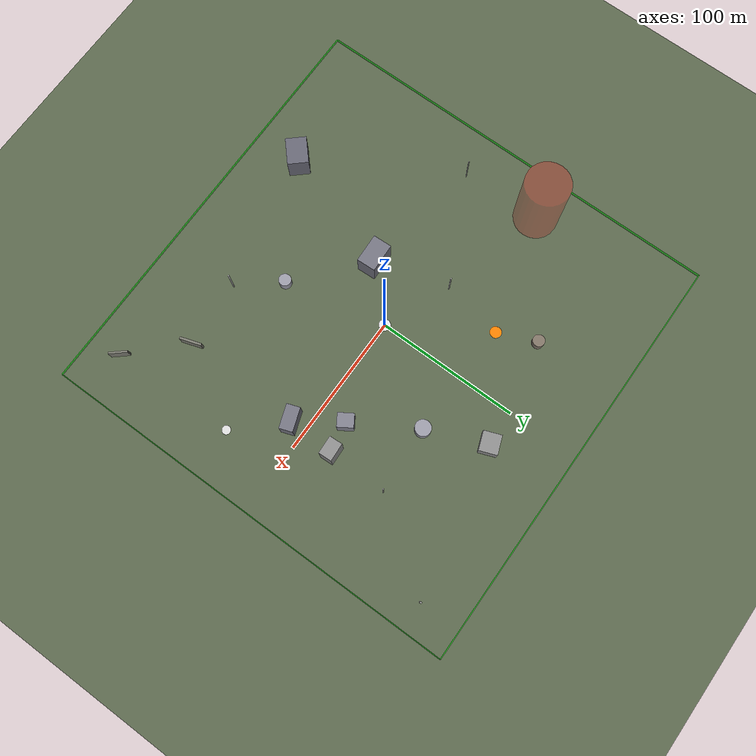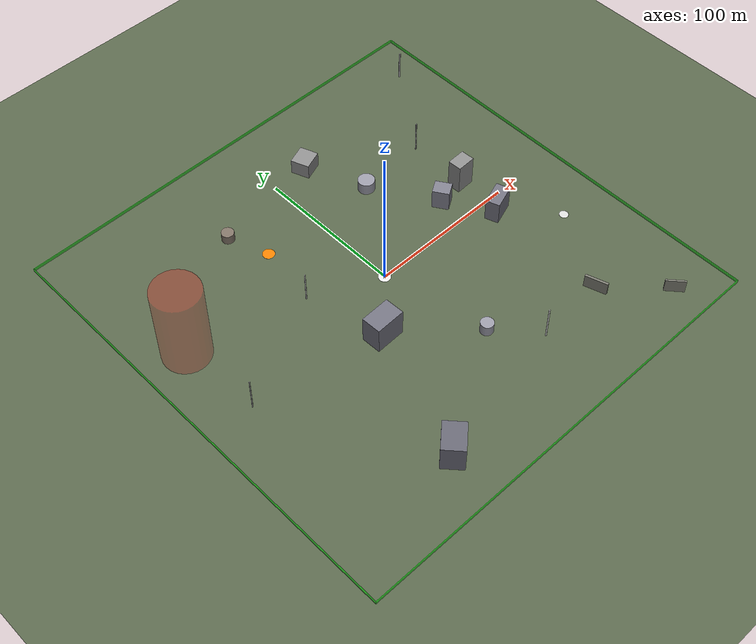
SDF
<?xml version="1.0" ?>
<sdf version="1.9">
  <!--
  Generated World: training_variant_004
  Seed: 46
  Difficulty: medium
  Obstacles: 16
  NFZs: 1
  Generated: 2025-12-27T10:39:35.541755
  Generator: Flyby F-11 World Generator v1.0.0
-->
  <world name="training_variant_004">
    <physics name="training_physics" type="ode">
      <max_step_size>0.001</max_step_size>
      <real_time_factor>1.0</real_time_factor>
      <real_time_update_rate>1000</real_time_update_rate>
      <ode>
        <solver>
          <type>quick</type>
          <iters>50</iters>
          <sor>1.3</sor>
        </solver>
        <constraints>
          <cfm>0.0</cfm>
          <erp>0.2</erp>
        </constraints>
      </ode>
    </physics>
    <plugin filename="gz-sim-physics-system" name="gz::sim::systems::Physics"/>
    <plugin filename="gz-sim-sensors-system" name="gz::sim::systems::Sensors">
      <render_engine>ogre2</render_engine>
    </plugin>
    <plugin filename="gz-sim-scene-broadcaster-system" name="gz::sim::systems::SceneBroadcaster"/>
    <plugin filename="gz-sim-user-commands-system" name="gz::sim::systems::UserCommands"/>
    <plugin filename="gz-sim-imu-system" name="gz::sim::systems::Imu"/>
    <plugin filename="gz-sim-air-pressure-system" name="gz::sim::systems::AirPressure"/>
    <plugin filename="gz-sim-magnetometer-system" name="gz::sim::systems::Magnetometer"/>
    <plugin filename="gz-sim-navsat-system" name="gz::sim::systems::NavSat"/>
    <plugin filename="gz-sim-contact-system" name="gz::sim::systems::Contact"/>
    <plugin filename="gz-sim-wind-effects-system" name="gz::sim::systems::WindEffects">
      <force_approximation_scaling_factor>1.0</force_approximation_scaling_factor>
    </plugin>
    <atmosphere type="adiabatic">
      <temperature>288.15</temperature>
      <pressure>101325</pressure>
      <mass_density>1.225</mass_density>
    </atmosphere>
    <wind>
      <linear_velocity>3.628473203410078 -0.8629025797986154 0</linear_velocity>
    </wind>
    <spherical_coordinates>
      <surface_model>EARTH_WGS84</surface_model>
      <world_frame_orientation>ENU</world_frame_orientation>
      <latitude_deg>33.3853</latitude_deg>
      <longitude_deg>-117.5653</longitude_deg>
      <elevation>100</elevation>
      <heading_deg>0</heading_deg>
    </spherical_coordinates>
    <scene>
      <ambient>0.4 0.35 0.35 1</ambient>
      <background>0.8 0.5 0.4 1</background>
      <shadows>true</shadows>
      <grid>false</grid>
    </scene>
    <light type="directional" name="sun">
      <cast_shadows>true</cast_shadows>
      <pose>0 0 100 0 0 0</pose>
      <diffuse>0.9 0.6 0.4 1</diffuse>
      <specular>0.2 0.1 0.1 1</specular>
      <attenuation>
        <range>1000</range>
        <constant>0.9</constant>
        <linear>0.01</linear>
        <quadratic>0.001</quadratic>
      </attenuation>
      <direction>-0.1 0.3 -0.3</direction>
    </light>
    <model name="ground_plane">
      <static>true</static>
      <link name="link">
        <collision name="collision">
          <geometry>
            <plane>
              <normal>0 0 1</normal>
              <size>500 500</size>
            </plane>
          </geometry>
          <surface>
            <friction>
              <ode>
                <mu>100</mu>
                <mu2>50</mu2>
              </ode>
            </friction>
          </surface>
        </collision>
        <visual name="visual">
          <geometry>
            <plane>
              <normal>0 0 1</normal>
              <size>500 500</size>
            </plane>
          </geometry>
          <material>
            <ambient>0.35 0.4 0.3 1</ambient>
            <diffuse>0.35 0.4 0.3 1</diffuse>
          </material>
        </visual>
      </link>
    </model>
    <model name="geofence_north">
      <static>true</static>
      <pose>0 150.0 1 0 0 0</pose>
      <link name="link">
        <visual name="visual">
          <geometry>
            <box>
              <size>300.0 0.5 2</size>
            </box>
          </geometry>
          <material>
            <ambient>0 0.8 0 0.6</ambient>
            <diffuse>0 0.8 0 0.6</diffuse>
            <emissive>0 0.2 0 1</emissive>
          </material>
        </visual>
      </link>
    </model>
    <model name="geofence_south">
      <static>true</static>
      <pose>0 -150.0 1 0 0 0</pose>
      <link name="link">
        <visual name="visual">
          <geometry>
            <box>
              <size>300.0 0.5 2</size>
            </box>
          </geometry>
          <material>
            <ambient>0 0.8 0 0.6</ambient>
            <diffuse>0 0.8 0 0.6</diffuse>
            <emissive>0 0.2 0 1</emissive>
          </material>
        </visual>
      </link>
    </model>
    <model name="geofence_east">
      <static>true</static>
      <pose>150.0 0 1 0 0 0</pose>
      <link name="link">
        <visual name="visual">
          <geometry>
            <box>
              <size>0.5 300.0 2</size>
            </box>
          </geometry>
          <material>
            <ambient>0 0.8 0 0.6</ambient>
            <diffuse>0 0.8 0 0.6</diffuse>
            <emissive>0 0.2 0 1</emissive>
          </material>
        </visual>
      </link>
    </model>
    <model name="geofence_west">
      <static>true</static>
      <pose>-150.0 0 1 0 0 0</pose>
      <link name="link">
        <visual name="visual">
          <geometry>
            <box>
              <size>0.5 300.0 2</size>
            </box>
          </geometry>
          <material>
            <ambient>0 0.8 0 0.6</ambient>
            <diffuse>0 0.8 0 0.6</diffuse>
            <emissive>0 0.2 0 1</emissive>
          </material>
        </visual>
      </link>
    </model>
    <model name="nfz_0_volume">
      <static>true</static>
      <pose>-121.15283939761811 38.30625586032481 28.689773339268744 0 0 0</pose>
      <link name="link">
        <visual name="visual">
          <geometry>
            <cylinder>
              <radius>15.240071941839476</radius>
              <length>57.37954667853749</length>
            </cylinder>
          </geometry>
          <material>
            <ambient>1 0 0 0.25</ambient>
            <diffuse>1 0 0 0.25</diffuse>
          </material>
        </visual>
      </link>
    </model>
    <model name="obstacle_pole_0">
      <static>true</static>
      <pose>37.41128979205419 -96.78633946541527 11.93793577062112 0 0 0.0</pose>
      <link name="link">
        <visual name="visual">
          <geometry>
            <cylinder>
              <radius>0.4760706533337831</radius>
              <length>23.87587154124224</length>
            </cylinder>
          </geometry>
          <material>
            <ambient>0.75 0.75 0.75 1.0</ambient>
            <diffuse>0.75 0.75 0.75 1.0</diffuse>
          </material>
        </visual>
        <collision name="collision">
          <geometry>
            <cylinder>
              <radius>0.4760706533337831</radius>
              <length>23.87587154124224</length>
            </cylinder>
          </geometry>
        </collision>
      </link>
    </model>
    <model name="obstacle_tank_1">
      <static>true</static>
      <pose>-48.890789131610205 88.34133360754942 3.206831010799622 0 0 0.0</pose>
      <link name="link">
        <visual name="visual">
          <geometry>
            <cylinder>
              <radius>4.128725559425071</radius>
              <length>6.413662021599244</length>
            </cylinder>
          </geometry>
          <material>
            <ambient>0.5 0.45 0.4 1.0</ambient>
            <diffuse>0.5 0.45 0.4 1.0</diffuse>
          </material>
        </visual>
        <collision name="collision">
          <geometry>
            <cylinder>
              <radius>4.128725559425071</radius>
              <length>6.413662021599244</length>
            </cylinder>
          </geometry>
        </collision>
      </link>
    </model>
    <model name="obstacle_pole_2">
      <static>true</static>
      <pose>129.93327068539224 120.66451871038481 10.13884672260489 0 0 0.0</pose>
      <link name="link">
        <visual name="visual">
          <geometry>
            <cylinder>
              <radius>0.5758620060130697</radius>
              <length>20.27769344520978</length>
            </cylinder>
          </geometry>
          <material>
            <ambient>0.65 0.65 0.65 1.0</ambient>
            <diffuse>0.65 0.65 0.65 1.0</diffuse>
          </material>
        </visual>
        <collision name="collision">
          <geometry>
            <cylinder>
              <radius>0.5758620060130697</radius>
              <length>20.27769344520978</length>
            </cylinder>
          </geometry>
        </collision>
      </link>
    </model>
    <model name="obstacle_building_3">
      <static>true</static>
      <pose>87.13369000595492 -10.6508243565181 8.001149102730098 0 0 0.3398133070898848</pose>
      <link name="link">
        <visual name="visual">
          <geometry>
            <box>
              <size>16.462647361643107 9.243406410552563 16.002298205460196</size>
            </box>
          </geometry>
          <material>
            <ambient>0.45 0.45 0.5 1.0</ambient>
            <diffuse>0.45 0.45 0.5 1.0</diffuse>
          </material>
        </visual>
        <collision name="collision">
          <geometry>
            <box>
              <size>16.462647361643107 9.243406410552563 16.002298205460196</size>
            </box>
          </geometry>
        </collision>
      </link>
    </model>
    <model name="obstacle_building_4">
      <static>true</static>
      <pose>25.26475409853404 100.44543794778116 5.303207400490976 0 0 0.36158954282594896</pose>
      <link name="link">
        <visual name="visual">
          <geometry>
            <box>
              <size>13.327466736301373 12.447152670291267 10.606414800981952</size>
            </box>
          </geometry>
          <material>
            <ambient>0.55 0.55 0.55 1.0</ambient>
            <diffuse>0.55 0.55 0.55 1.0</diffuse>
          </material>
        </visual>
        <collision name="collision">
          <geometry>
            <box>
              <size>13.327466736301373 12.447152670291267 10.606414800981952</size>
            </box>
          </geometry>
        </collision>
      </link>
    </model>
    <model name="obstacle_building_5">
      <static>true</static>
      <pose>87.98644696573129 22.270402964620672 10.597727531425948 0 0 0.05072833899534793</pose>
      <link name="link">
        <visual name="visual">
          <geometry>
            <box>
              <size>12.606334236419256 9.209691486945083 21.195455062851895</size>
            </box>
          </geometry>
          <material>
            <ambient>0.55 0.55 0.55 1.0</ambient>
            <diffuse>0.55 0.55 0.55 1.0</diffuse>
          </material>
        </visual>
        <collision name="collision">
          <geometry>
            <box>
              <size>12.606334236419256 9.209691486945083 21.195455062851895</size>
            </box>
          </geometry>
        </collision>
      </link>
    </model>
    <model name="obstacle_building_6">
      <static>true</static>
      <pose>67.56892635485664 18.452173562700494 7.109734546417933 0 0 0.5655145045869338</pose>
      <link name="link">
        <visual name="visual">
          <geometry>
            <box>
              <size>9.389471563894322 11.040911180129477 14.219469092835865</size>
            </box>
          </geometry>
          <material>
            <ambient>0.5 0.5 0.55 1.0</ambient>
            <diffuse>0.5 0.5 0.55 1.0</diffuse>
          </material>
        </visual>
        <collision name="collision">
          <geometry>
            <box>
              <size>9.389471563894322 11.040911180129477 14.219469092835865</size>
            </box>
          </geometry>
        </collision>
      </link>
    </model>
    <model name="obstacle_pole_7">
      <static>true</static>
      <pose>-45.31029358558155 20.003913526650365 11.207192199612338 0 0 0.0</pose>
      <link name="link">
        <visual name="visual">
          <geometry>
            <cylinder>
              <radius>0.4182909766599998</radius>
              <length>22.414384399224677</length>
            </cylinder>
          </geometry>
          <material>
            <ambient>0.75 0.75 0.75 1.0</ambient>
            <diffuse>0.75 0.75 0.75 1.0</diffuse>
          </material>
        </visual>
        <collision name="collision">
          <geometry>
            <cylinder>
              <radius>0.4182909766599998</radius>
              <length>22.414384399224677</length>
            </cylinder>
          </geometry>
        </collision>
      </link>
    </model>
    <model name="obstacle_wall_8">
      <static>true</static>
      <pose>117.57093921273844 -127.41750676109463 4.723928592974428 0 0 2.289419279293963</pose>
      <link name="link">
        <visual name="visual">
          <geometry>
            <box>
              <size>12.782436110142951 1.3008427873564161 9.447857185948855</size>
            </box>
          </geometry>
          <material>
            <ambient>0.48 0.48 0.44 1.0</ambient>
            <diffuse>0.48 0.48 0.44 1.0</diffuse>
          </material>
        </visual>
        <collision name="collision">
          <geometry>
            <box>
              <size>12.782436110142951 1.3008427873564161 9.447857185948855</size>
            </box>
          </geometry>
        </collision>
      </link>
    </model>
    <model name="obstacle_pole_9">
      <static>true</static>
      <pose>-118.15802974080113 -16.519512833187775 12.192003655649426 0 0 0.0</pose>
      <link name="link">
        <visual name="visual">
          <geometry>
            <cylinder>
              <radius>0.3703934744721301</radius>
              <length>24.384007311298852</length>
            </cylinder>
          </geometry>
          <material>
            <ambient>0.65 0.65 0.65 1.0</ambient>
            <diffuse>0.65 0.65 0.65 1.0</diffuse>
          </material>
        </visual>
        <collision name="collision">
          <geometry>
            <cylinder>
              <radius>0.3703934744721301</radius>
              <length>24.384007311298852</length>
            </cylinder>
          </geometry>
        </collision>
      </link>
    </model>
    <model name="obstacle_pole_10">
      <static>true</static>
      <pose>89.02055859313515 63.421843516040354 11.402827160509002 0 0 0.0</pose>
      <link name="link">
        <visual name="visual">
          <geometry>
            <cylinder>
              <radius>0.41432192297766274</radius>
              <length>22.805654321018004</length>
            </cylinder>
          </geometry>
          <material>
            <ambient>0.7 0.7 0.7 1.0</ambient>
            <diffuse>0.7 0.7 0.7 1.0</diffuse>
          </material>
        </visual>
        <collision name="collision">
          <geometry>
            <cylinder>
              <radius>0.41432192297766274</radius>
              <length>22.805654321018004</length>
            </cylinder>
          </geometry>
        </collision>
      </link>
    </model>
    <model name="obstacle_building_11">
      <static>true</static>
      <pose>-31.267456280740262 -31.065735757644774 9.593630467718889 0 0 0.04150271204578927</pose>
      <link name="link">
        <visual name="visual">
          <geometry>
            <box>
              <size>19.865929080452133 13.110460083563936 19.187260935437777</size>
            </box>
          </geometry>
          <material>
            <ambient>0.45 0.45 0.5 1.0</ambient>
            <diffuse>0.45 0.45 0.5 1.0</diffuse>
          </material>
        </visual>
        <collision name="collision">
          <geometry>
            <box>
              <size>19.865929080452133 13.110460083563936 19.187260935437777</size>
            </box>
          </geometry>
        </collision>
      </link>
    </model>
    <model name="obstacle_tank_12">
      <static>true</static>
      <pose>42.013652557751186 60.49100746038329 3.9580221014555432 0 0 0.0</pose>
      <link name="link">
        <visual name="visual">
          <geometry>
            <cylinder>
              <radius>5.510514403170323</radius>
              <length>7.9160442029110865</length>
            </cylinder>
          </geometry>
          <material>
            <ambient>0.6 0.6 0.65 1.0</ambient>
            <diffuse>0.6 0.6 0.65 1.0</diffuse>
          </material>
        </visual>
        <collision name="collision">
          <geometry>
            <cylinder>
              <radius>5.510514403170323</radius>
              <length>7.9160442029110865</length>
            </cylinder>
          </geometry>
        </collision>
      </link>
    </model>
    <model name="obstacle_tank_13">
      <static>true</static>
      <pose>15.20198721114346 -70.25726574868669 3.741994305079917 0 0 0.0</pose>
      <link name="link">
        <visual name="visual">
          <geometry>
            <cylinder>
              <radius>4.228018951576486</radius>
              <length>7.483988610159834</length>
            </cylinder>
          </geometry>
          <material>
            <ambient>0.6 0.6 0.65 1.0</ambient>
            <diffuse>0.6 0.6 0.65 1.0</diffuse>
          </material>
        </visual>
        <collision name="collision">
          <geometry>
            <cylinder>
              <radius>4.228018951576486</radius>
              <length>7.483988610159834</length>
            </cylinder>
          </geometry>
        </collision>
      </link>
    </model>
    <model name="obstacle_building_14">
      <static>true</static>
      <pose>-59.49710785487386 -115.81898496876438 9.618522303707909 0 0 0.7336107233091643</pose>
      <link name="link">
        <visual name="visual">
          <geometry>
            <box>
              <size>18.726895748793094 14.330534098596512 19.237044607415818</size>
            </box>
          </geometry>
          <material>
            <ambient>0.4 0.4 0.45 1.0</ambient>
            <diffuse>0.4 0.4 0.45 1.0</diffuse>
          </material>
        </visual>
        <collision name="collision">
          <geometry>
            <box>
              <size>18.726895748793094 14.330534098596512 19.237044607415818</size>
            </box>
          </geometry>
        </collision>
      </link>
    </model>
    <model name="obstacle_wall_15">
      <static>true</static>
      <pose>84.36967943439214 -94.15979785360025 4.643298357275424 0 0 1.8803643915093733</pose>
      <link name="link">
        <visual name="visual">
          <geometry>
            <box>
              <size>14.977423022722139 1.639546084678093 9.286596714550848</size>
            </box>
          </geometry>
          <material>
            <ambient>0.48 0.48 0.44 1.0</ambient>
            <diffuse>0.48 0.48 0.44 1.0</diffuse>
          </material>
        </visual>
        <collision name="collision">
          <geometry>
            <box>
              <size>14.977423022722139 1.639546084678093 9.286596714550848</size>
            </box>
          </geometry>
        </collision>
      </link>
    </model>
    <model name="lz_primary">
      <static>true</static>
      <pose>0 0 0.02 0 0 0</pose>
      <link name="link">
        <visual name="pad">
          <geometry>
            <cylinder>
              <radius>4.0</radius>
              <length>0.04</length>
            </cylinder>
          </geometry>
          <material>
            <ambient>0.9 0.9 0.9 1</ambient>
            <diffuse>0.9 0.9 0.9 1</diffuse>
          </material>
        </visual>
        <visual name="H_v">
          <pose>0 0 0.02 0 0 0</pose>
          <geometry>
            <box>
              <size>0.6 2.5 0.01</size>
            </box>
          </geometry>
          <material>
            <ambient>0 0 0.8 1</ambient>
            <diffuse>0 0 0.8 1</diffuse>
          </material>
        </visual>
        <visual name="H_h">
          <pose>0 0 0.02 0 0 0</pose>
          <geometry>
            <box>
              <size>2.5 0.6 0.01</size>
            </box>
          </geometry>
          <material>
            <ambient>0 0 0.8 1</ambient>
            <diffuse>0 0 0.8 1</diffuse>
          </material>
        </visual>
      </link>
    </model>
    <model name="lz_secondary">
      <static>true</static>
      <pose>116.03805375755189 -41.46856177870809 0.02 0 0 0</pose>
      <link name="link">
        <visual name="pad">
          <geometry>
            <cylinder>
              <radius>3.0</radius>
              <length>0.04</length>
            </cylinder>
          </geometry>
          <material>
            <ambient>0.85 0.85 0.85 1</ambient>
            <diffuse>0.85 0.85 0.85 1</diffuse>
          </material>
        </visual>
      </link>
    </model>
    <model name="lz_emergency">
      <static>true</static>
      <pose>-38.74076343776592 62.13914339076601 0.02 0 0 0</pose>
      <link name="link">
        <visual name="pad">
          <geometry>
            <cylinder>
              <radius>4.0</radius>
              <length>0.04</length>
            </cylinder>
          </geometry>
          <material>
            <ambient>1 0.5 0 1</ambient>
            <diffuse>1 0.5 0 1</diffuse>
          </material>
        </visual>
      </link>
    </model>
    <include>
      <uri>model://iris_with_ardupilot</uri>
      <name>iris</name>
      <pose>0 0 0.5 0 0 0</pose>
    </include>
  </world>
</sdf>

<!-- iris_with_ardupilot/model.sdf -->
<sdf version="1.9">
  <model name="iris_with_ardupilot">
    <pose>0 0 0.2 0 0 0</pose>

    <link name="base_link">
      <inertial>
        <mass>1.5</mass>
        <inertia>
          <ixx>0.029125</ixx>
          <ixy>0</ixy>
          <ixz>0</ixz>
          <iyy>0.029125</iyy>
          <iyz>0</iyz>
          <izz>0.055225</izz>
        </inertia>
      </inertial>

      <visual name="body_visual">
        <geometry>
          <box>
            <size>0.47 0.47 0.11</size>
          </box>
        </geometry>
        <material>
          <ambient>0.2 0.2 0.2 1</ambient>
          <diffuse>0.2 0.2 0.2 1</diffuse>
        </material>
      </visual>

      <!-- Center marker for orientation (green = forward) -->
      <visual name="center_marker">
        <pose>0.15 0 0 0 0 0</pose>
        <geometry>
          <sphere>
            <radius>0.05</radius>
          </sphere>
        </geometry>
        <material>
          <ambient>0 1 0 1</ambient>
          <diffuse>0 1 0 1</diffuse>
        </material>
      </visual>

      <collision name="collision">
        <geometry>
          <box>
            <size>0.47 0.47 0.11</size>
          </box>
        </geometry>
      </collision>

      <!-- GPS/NavSat Sensor                -->
      <!-- Consumer-grade GPS accuracy      -->
      <sensor name="navsat_sensor" type="navsat">
        <always_on>1</always_on>
        <update_rate>10</update_rate>
        <topic>gps</topic>
        <navsat>
          <position_sensing>
            <horizontal>
              <noise type="gaussian">
                <mean>0.0</mean>
                <stddev>0.5</stddev>
              </noise>
            </horizontal>
            <vertical>
              <noise type="gaussian">
                <mean>0.0</mean>
                <stddev>1.0</stddev>
              </noise>
            </vertical>
          </position_sensing>
          <velocity_sensing>
            <horizontal>
              <noise type="gaussian">
                <mean>0.0</mean>
                <stddev>0.05</stddev>
              </noise>
            </horizontal>
            <vertical>
              <noise type="gaussian">
                <mean>0.0</mean>
                <stddev>0.1</stddev>
              </noise>
            </vertical>
          </velocity_sensing>
        </navsat>
      </sensor>

      <!-- Magnetometer Sensor              -->
      <!-- Earth magnetic field sensing     -->
      <!-- Declination: ~11.5 deg E (San Diego) -->
      <sensor name="magnetometer_sensor" type="magnetometer">
        <always_on>1</always_on>
        <update_rate>50</update_rate>
        <topic>magnetometer</topic>
        <magnetometer>
          <x>
            <noise type="gaussian">
              <mean>0</mean>
              <stddev>0.001</stddev>
              <bias_mean>0.00001</bias_mean>
              <bias_stddev>0.000002</bias_stddev>
            </noise>
          </x>
          <y>
            <noise type="gaussian">
              <mean>0</mean>
              <stddev>0.001</stddev>
              <bias_mean>0.00001</bias_mean>
              <bias_stddev>0.000002</bias_stddev>
            </noise>
          </y>
          <z>
            <noise type="gaussian">
              <mean>0</mean>
              <stddev>0.001</stddev>
              <bias_mean>0.00001</bias_mean>
              <bias_stddev>0.000002</bias_stddev>
            </noise>
          </z>
        </magnetometer>
      </sensor>

      <!-- Barometer Sensor                 -->
      <!-- Atmospheric pressure sensing     -->
      <!-- ~8.3 Pa per meter at sea level   -->
      <sensor name="air_pressure_sensor" type="air_pressure">
        <always_on>1</always_on>
        <update_rate>20</update_rate>
        <topic>air_pressure</topic>
        <air_pressure>
          <reference_altitude>0</reference_altitude>
          <pressure>
            <noise type="gaussian">
              <mean>0</mean>
              <stddev>10</stddev>
            </noise>
          </pressure>
        </air_pressure>
      </sensor>

    </link>

    <!-- Rotor 0 (Front Right, CW)        -->
    <link name="rotor_0">
      <pose>0.13 -0.22 0.023 0 0 0</pose>
      <inertial>
        <mass>0.005</mass>
        <inertia>
          <ixx>9.75e-07</ixx>
          <ixy>0</ixy>
          <ixz>0</ixz>
          <iyy>0.000166704</iyy>
          <iyz>0</iyz>
          <izz>0.000167604</izz>
        </inertia>
      </inertial>
      <visual name="visual">
        <geometry>
          <cylinder>
            <radius>0.128</radius>
            <length>0.005</length>
          </cylinder>
        </geometry>
        <material>
          <ambient>1 0 0 1</ambient>
          <diffuse>1 0 0 1</diffuse>
        </material>
      </visual>
    </link>

    <!-- Rotor 1 (Back Left, CW)          -->
    <link name="rotor_1">
      <pose>-0.13 0.2 0.023 0 0 0</pose>
      <inertial>
        <mass>0.005</mass>
        <inertia>
          <ixx>9.75e-07</ixx>
          <ixy>0</ixy>
          <ixz>0</ixz>
          <iyy>0.000166704</iyy>
          <iyz>0</iyz>
          <izz>0.000167604</izz>
        </inertia>
      </inertial>
      <visual name="visual">
        <geometry>
          <cylinder>
            <radius>0.128</radius>
            <length>0.005</length>
          </cylinder>
        </geometry>
        <material>
          <ambient>1 0 0 1</ambient>
          <diffuse>1 0 0 1</diffuse>
        </material>
      </visual>
    </link>

    <!-- Rotor 2 (Front Left, CCW)        -->
    <link name="rotor_2">
      <pose>0.13 0.22 0.023 0 0 0</pose>
      <inertial>
        <mass>0.005</mass>
        <inertia>
          <ixx>9.75e-07</ixx>
          <ixy>0</ixy>
          <ixz>0</ixz>
          <iyy>0.000166704</iyy>
          <iyz>0</iyz>
          <izz>0.000167604</izz>
        </inertia>
      </inertial>
      <visual name="visual">
        <geometry>
          <cylinder>
            <radius>0.128</radius>
            <length>0.005</length>
          </cylinder>
        </geometry>
        <material>
          <ambient>0 0 1 1</ambient>
          <diffuse>0 0 1 1</diffuse>
        </material>
      </visual>
    </link>

    <!-- Rotor 3 (Back Right, CCW)        -->
    <link name="rotor_3">
      <pose>-0.13 -0.2 0.023 0 0 0</pose>
      <inertial>
        <mass>0.005</mass>
        <inertia>
          <ixx>9.75e-07</ixx>
          <ixy>0</ixy>
          <ixz>0</ixz>
          <iyy>0.000166704</iyy>
          <iyz>0</iyz>
          <izz>0.000167604</izz>
        </inertia>
      </inertial>
      <visual name="visual">
        <geometry>
          <cylinder>
            <radius>0.128</radius>
            <length>0.005</length>
          </cylinder>
        </geometry>
        <material>
          <ambient>0 0 1 1</ambient>
          <diffuse>0 0 1 1</diffuse>
        </material>
      </visual>
    </link>

    <!-- Rotor joints -->
    <joint name="rotor_0_joint" type="revolute">
      <parent>base_link</parent>
      <child>rotor_0</child>
      <axis>
        <xyz>0 0 1</xyz>
        <limit>
          <lower>-1e16</lower>
          <upper>1e16</upper>
        </limit>
      </axis>
    </joint>

    <joint name="rotor_1_joint" type="revolute">
      <parent>base_link</parent>
      <child>rotor_1</child>
      <axis>
        <xyz>0 0 1</xyz>
        <limit>
          <lower>-1e16</lower>
          <upper>1e16</upper>
        </limit>
      </axis>
    </joint>

    <joint name="rotor_2_joint" type="revolute">
      <parent>base_link</parent>
      <child>rotor_2</child>
      <axis>
        <xyz>0 0 1</xyz>
        <limit>
          <lower>-1e16</lower>
          <upper>1e16</upper>
        </limit>
      </axis>
    </joint>

    <joint name="rotor_3_joint" type="revolute">
      <parent>base_link</parent>
      <child>rotor_3</child>
      <axis>
        <xyz>0 0 1</xyz>
        <limit>
          <lower>-1e16</lower>
          <upper>1e16</upper>
        </limit>
      </axis>
    </joint>

    <!-- IMU Sensor Link                  -->
    <!-- 250Hz MEMS IMU with noise        -->
    <link name="imu_link">
      <pose>0 0 0 0 0 0</pose>
      <inertial>
        <mass>0.001</mass>
        <inertia>
          <ixx>1e-05</ixx>
          <ixy>0</ixy>
          <ixz>0</ixz>
          <iyy>1e-05</iyy>
          <iyz>0</iyz>
          <izz>1e-05</izz>
        </inertia>
      </inertial>
      <sensor name="imu_sensor" type="imu">
        <always_on>1</always_on>
        <update_rate>250</update_rate>
        <topic>imu</topic>
        <imu>
          <angular_velocity>
            <x>
              <noise type="gaussian">
                <mean>0</mean>
                <stddev>0.009</stddev>
                <bias_mean>0.0001</bias_mean>
                <bias_stddev>0.00002</bias_stddev>
              </noise>
            </x>
            <y>
              <noise type="gaussian">
                <mean>0</mean>
                <stddev>0.009</stddev>
                <bias_mean>0.0001</bias_mean>
                <bias_stddev>0.00002</bias_stddev>
              </noise>
            </y>
            <z>
              <noise type="gaussian">
                <mean>0</mean>
                <stddev>0.009</stddev>
                <bias_mean>0.0001</bias_mean>
                <bias_stddev>0.00002</bias_stddev>
              </noise>
            </z>
          </angular_velocity>
          <linear_acceleration>
            <x>
              <noise type="gaussian">
                <mean>0</mean>
                <stddev>0.017</stddev>
                <bias_mean>0.001</bias_mean>
                <bias_stddev>0.0002</bias_stddev>
              </noise>
            </x>
            <y>
              <noise type="gaussian">
                <mean>0</mean>
                <stddev>0.017</stddev>
                <bias_mean>0.001</bias_mean>
                <bias_stddev>0.0002</bias_stddev>
              </noise>
            </y>
            <z>
              <noise type="gaussian">
                <mean>0</mean>
                <stddev>0.017</stddev>
                <bias_mean>0.001</bias_mean>
                <bias_stddev>0.0002</bias_stddev>
              </noise>
            </z>
          </linear_acceleration>
        </imu>
      </sensor>
    </link>

    <joint name="imu_joint" type="fixed">
      <parent>base_link</parent>
      <child>imu_link</child>
    </joint>

    <!-- Rangefinder Link                 -->
    <!-- Downward-facing lidar for AGL    -->
    <link name="rangefinder_link">
      <pose>0 0 -0.05 0 0 0</pose>
      <inertial>
        <mass>0.01</mass>
        <inertia>
          <ixx>1e-05</ixx>
          <ixy>0</ixy>
          <ixz>0</ixz>
          <iyy>1e-05</iyy>
          <iyz>0</iyz>
          <izz>1e-05</izz>
        </inertia>
      </inertial>
      <visual name="visual">
        <geometry>
          <cylinder>
            <radius>0.01</radius>
            <length>0.02</length>
          </cylinder>
        </geometry>
        <material>
          <ambient>0.5 0.5 0.5 1</ambient>
          <diffuse>0.5 0.5 0.5 1</diffuse>
        </material>
      </visual>
      <sensor name="rangefinder" type="gpu_lidar">
        <!-- Pointing straight down (pitch = -90 deg = -1.5708 rad) -->
        <pose>0 0 0 0 1.5708 0</pose>
        <always_on>1</always_on>
        <update_rate>20</update_rate>
        <topic>rangefinder</topic>
        <ray>
          <scan>
            <horizontal>
              <samples>1</samples>
              <resolution>1</resolution>
              <min_angle>0</min_angle>
              <max_angle>0</max_angle>
            </horizontal>
            <vertical>
              <samples>1</samples>
              <resolution>1</resolution>
              <min_angle>0</min_angle>
              <max_angle>0</max_angle>
            </vertical>
          </scan>
          <range>
            <min>0.1</min>
            <max>40.0</max>
            <resolution>0.01</resolution>
          </range>
          <noise>
            <type>gaussian</type>
            <mean>0</mean>
            <stddev>0.02</stddev>
          </noise>
        </ray>
        <visualize>false</visualize>
      </sensor>
    </link>

    <joint name="rangefinder_joint" type="fixed">
      <parent>base_link</parent>
      <child>rangefinder_link</child>
    </joint>

    <!-- ArduPilot Plugin                 -->
    <plugin filename="ArduPilotPlugin" name="ArduPilotPlugin">
      <!-- Network Configuration -->
      <fdm_addr>127.0.0.1</fdm_addr>
      <fdm_port_in>9002</fdm_port_in>
      <fdm_port_out>9003</fdm_port_out>
      <connectionTimeoutMaxCount>5</connectionTimeoutMaxCount>

      <!-- Simulation Settings -->
      <lock_step>1</lock_step>
      <have_32_channels>0</have_32_channels>

      <!-- Coordinate Transforms -->
      <modelXYZToAirplaneXForwardZDown>0 0 0 3.141593 0 0</modelXYZToAirplaneXForwardZDown>
      <gazeboXYZToNED>0 0 0 3.141593 0 0</gazeboXYZToNED>

      <!-- Sensor Reference -->
      <imuName>imu_link::imu_sensor</imuName>

      <!-- Control Channel 0: Front Right (CW) -->
      <control channel="0">
        <jointName>rotor_0_joint</jointName>
        <useForce>1</useForce>
        <multiplier>838</multiplier>
        <offset>-0.5</offset>
        <servo_min>1000</servo_min>
        <servo_max>2000</servo_max>
        <type>VELOCITY</type>
        <p_gain>0.20</p_gain>
        <i_gain>0</i_gain>
        <d_gain>0</d_gain>
        <i_max>0</i_max>
        <i_min>0</i_min>
        <cmd_max>2.5</cmd_max>
        <cmd_min>-2.5</cmd_min>
      </control>

      <!-- Control Channel 1: Back Left (CW) -->
      <control channel="1">
        <jointName>rotor_1_joint</jointName>
        <useForce>1</useForce>
        <multiplier>838</multiplier>
        <offset>-0.5</offset>
        <servo_min>1000</servo_min>
        <servo_max>2000</servo_max>
        <type>VELOCITY</type>
        <p_gain>0.20</p_gain>
        <i_gain>0</i_gain>
        <d_gain>0</d_gain>
        <i_max>0</i_max>
        <i_min>0</i_min>
        <cmd_max>2.5</cmd_max>
        <cmd_min>-2.5</cmd_min>
      </control>

      <!-- Control Channel 2: Front Left (CCW) -->
      <control channel="2">
        <jointName>rotor_2_joint</jointName>
        <useForce>1</useForce>
        <multiplier>838</multiplier>
        <offset>-0.5</offset>
        <servo_min>1000</servo_min>
        <servo_max>2000</servo_max>
        <type>VELOCITY</type>
        <p_gain>0.20</p_gain>
        <i_gain>0</i_gain>
        <d_gain>0</d_gain>
        <i_max>0</i_max>
        <i_min>0</i_min>
        <cmd_max>2.5</cmd_max>
        <cmd_min>-2.5</cmd_min>
      </control>

      <!-- Control Channel 3: Back Right (CCW) -->
      <control channel="3">
        <jointName>rotor_3_joint</jointName>
        <useForce>1</useForce>
        <multiplier>838</multiplier>
        <offset>-0.5</offset>
        <servo_min>1000</servo_min>
        <servo_max>2000</servo_max>
        <type>VELOCITY</type>
        <p_gain>0.20</p_gain>
        <i_gain>0</i_gain>
        <d_gain>0</d_gain>
        <i_max>0</i_max>
        <i_min>0</i_min>
        <cmd_max>2.5</cmd_max>
        <cmd_min>-2.5</cmd_min>
      </control>
    </plugin>

  </model>
</sdf>
